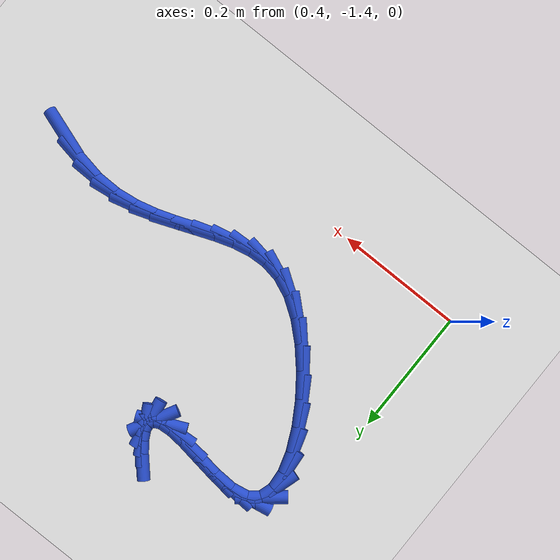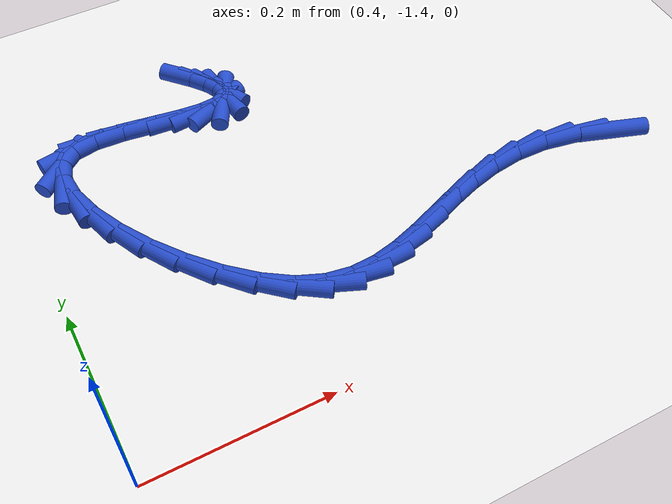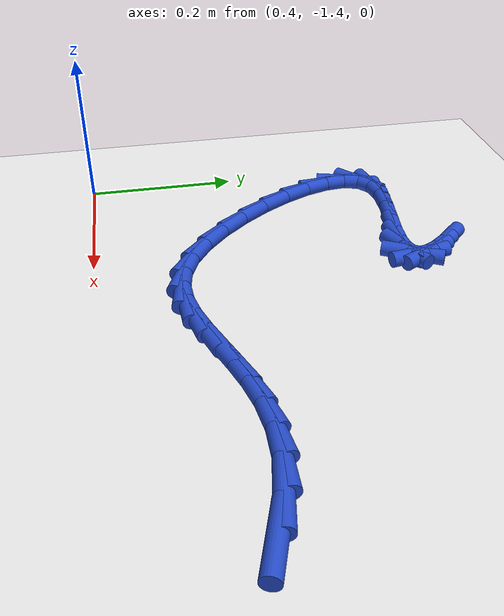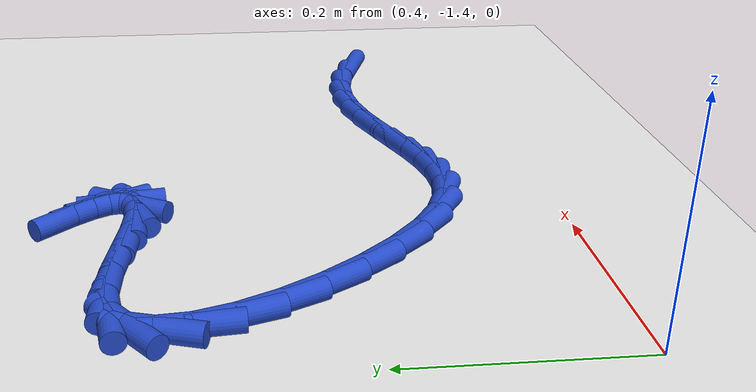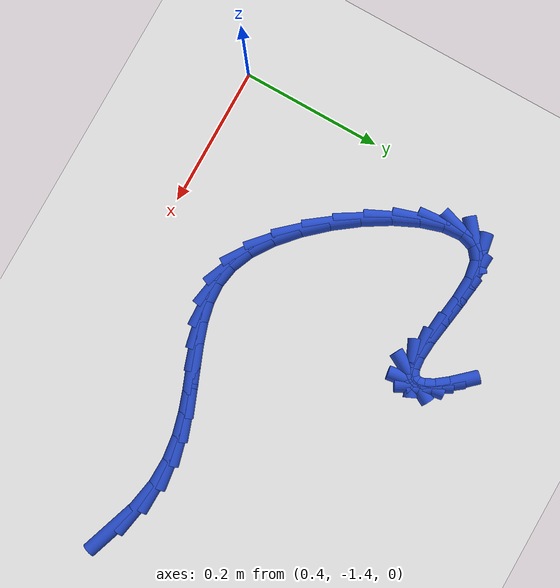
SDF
<sdf version="1.6">
 <world name="default">
  <model name="ground_plane">
   <static>1</static>
   <link name="link">
    <collision name="collision">
     <geometry><plane><normal>0 0 1</normal><size>100 100</size></plane></geometry>
     <surface><friction><ode><mu>100</mu><mu2>50</mu2></ode></friction></surface>
    </collision>
    <visual name="visual">
     <cast_shadows>0</cast_shadows>
     <geometry><plane><normal>0 0 1</normal><size>100 100</size></plane></geometry>
     <material>
      <script><uri>file://media/materials/scripts/gazebo.material</uri><name>Gazebo/WhiteGlow</name></script>
     </material>
    </visual>
   </link>
  </model>
  <model name="line">
   <link name="link_214">
    <pose>1.0316290465532898 -1.2549006064332544 0.01 0 1.57 -0.3308425352125115</pose>
    <collision name="collision">
     <geometry><cylinder><radius>0.01</radius><length>0.08</length></cylinder></geometry>
    </collision>
    <visual name="visual">
     <material>
      <script><name>Gazebo/Blue</name><uri>file://media/materials/scripts/gazebo.material</uri></script>
     </material>
     <geometry><cylinder><radius>0.01</radius><length>0.08</length></cylinder></geometry>
    </visual>
   </link>
   <link name="link_215">
    <pose>0.9897086421846959 -1.240502350872005 0.01 0 1.57 -0.18166723444582458</pose>
    <collision name="collision">
     <geometry><cylinder><radius>0.01</radius><length>0.08</length></cylinder></geometry>
    </collision>
    <visual name="visual">
     <material>
      <script><name>Gazebo/Blue</name><uri>file://media/materials/scripts/gazebo.material</uri></script>
     </material>
     <geometry><cylinder><radius>0.01</radius><length>0.08</length></cylinder></geometry>
    </visual>
   </link>
   <link name="link_216">
    <pose>0.9503331191479575 -1.233269362811756 0.01 0 1.57 -0.01719429442022004</pose>
    <collision name="collision">
     <geometry><cylinder><radius>0.01</radius><length>0.08</length></cylinder></geometry>
    </collision>
    <visual name="visual">
     <material>
      <script><name>Gazebo/Blue</name><uri>file://media/materials/scripts/gazebo.material</uri></script>
     </material>
     <geometry><cylinder><radius>0.01</radius><length>0.08</length></cylinder></geometry>
    </visual>
   </link>
   <link name="link_217">
    <pose>0.9136022588104983 -1.2326377393383992 0.01 0 1.57 0.13160253142416517</pose>
    <collision name="collision">
     <geometry><cylinder><radius>0.01</radius><length>0.08</length></cylinder></geometry>
    </collision>
    <visual name="visual">
     <material>
      <script><name>Gazebo/Blue</name><uri>file://media/materials/scripts/gazebo.material</uri></script>
     </material>
     <geometry><cylinder><radius>0.01</radius><length>0.08</length></cylinder></geometry>
    </visual>
   </link>
   <link name="link_218">
    <pose>0.879168828273526 -1.2371956093213774 0.01 0 1.57 0.2511171074284402</pose>
    <collision name="collision">
     <geometry><cylinder><radius>0.01</radius><length>0.08</length></cylinder></geometry>
    </collision>
    <visual name="visual">
     <material>
      <script><name>Gazebo/Blue</name><uri>file://media/materials/scripts/gazebo.material</uri></script>
     </material>
     <geometry><cylinder><radius>0.01</radius><length>0.08</length></cylinder></geometry>
    </visual>
   </link>
   <link name="link_219">
    <pose>0.846684435215825 -1.2455289022520908 0.01 0 1.57 0.3333633458584189</pose>
    <collision name="collision">
     <geometry><cylinder><radius>0.01</radius><length>0.08</length></cylinder></geometry>
    </collision>
    <visual name="visual">
     <material>
      <script><name>Gazebo/Blue</name><uri>file://media/materials/scripts/gazebo.material</uri></script>
     </material>
     <geometry><cylinder><radius>0.01</radius><length>0.08</length></cylinder></geometry>
    </visual>
   </link>
   <link name="link_220">
    <pose>0.8158006873161805 -1.25622354762194 0.01 0 1.57 0.374362348891255</pose>
    <collision name="collision">
     <geometry><cylinder><radius>0.01</radius><length>0.08</length></cylinder></geometry>
    </collision>
    <visual name="visual">
     <material>
      <script><name>Gazebo/Blue</name><uri>file://media/materials/scripts/gazebo.material</uri></script>
     </material>
     <geometry><cylinder><radius>0.01</radius><length>0.08</length></cylinder></geometry>
    </visual>
   </link>
   <link name="link_221">
    <pose>0.7861691922533788 -1.2678654749223264 0.01 0 1.57 0.37099048728548634</pose>
    <collision name="collision">
     <geometry><cylinder><radius>0.01</radius><length>0.08</length></cylinder></geometry>
    </collision>
    <visual name="visual">
     <material>
      <script><name>Gazebo/Blue</name><uri>file://media/materials/scripts/gazebo.material</uri></script>
     </material>
     <geometry><cylinder><radius>0.01</radius><length>0.08</length></cylinder></geometry>
    </visual>
   </link>
   <link name="link_222">
    <pose>0.7574415577062048 -1.27904061364465 0.01 0 1.57 0.3186664042334518</pose>
    <collision name="collision">
     <geometry><cylinder><radius>0.01</radius><length>0.08</length></cylinder></geometry>
    </collision>
    <visual name="visual">
     <material>
      <script><name>Gazebo/Blue</name><uri>file://media/materials/scripts/gazebo.material</uri></script>
     </material>
     <geometry><cylinder><radius>0.01</radius><length>0.08</length></cylinder></geometry>
    </visual>
   </link>
   <link name="link_223">
    <pose>0.7292693913534442 -1.288334893280311 0.01 0 1.57 0.21132685446694024</pose>
    <collision name="collision">
     <geometry><cylinder><radius>0.01</radius><length>0.08</length></cylinder></geometry>
    </collision>
    <visual name="visual">
     <material>
      <script><name>Gazebo/Blue</name><uri>file://media/materials/scripts/gazebo.material</uri></script>
     </material>
     <geometry><cylinder><radius>0.01</radius><length>0.08</length></cylinder></geometry>
    </visual>
   </link>
   <link name="link_224">
    <pose>0.701304300873883 -1.2943342433207108 0.01 0 1.57 0.04587724560419436</pose>
    <collision name="collision">
     <geometry><cylinder><radius>0.01</radius><length>0.08</length></cylinder></geometry>
    </collision>
    <visual name="visual">
     <material>
      <script><name>Gazebo/Blue</name><uri>file://media/materials/scripts/gazebo.material</uri></script>
     </material>
     <geometry><cylinder><radius>0.01</radius><length>0.08</length></cylinder></geometry>
    </visual>
   </link>
   <link name="link_225">
    <pose>0.6731978939463061 -1.2956245932572497 0.01 0 1.57 -0.16741730730868673</pose>
    <collision name="collision">
     <geometry><cylinder><radius>0.01</radius><length>0.08</length></cylinder></geometry>
    </collision>
    <visual name="visual">
     <material>
      <script><name>Gazebo/Blue</name><uri>file://media/materials/scripts/gazebo.material</uri></script>
     </material>
     <geometry><cylinder><radius>0.01</radius><length>0.08</length></cylinder></geometry>
    </visual>
   </link>
   <link name="link_226">
    <pose>0.644601778249499 -1.2907918725813285 0.01 0 1.57 -0.39772508614588237</pose>
    <collision name="collision">
     <geometry><cylinder><radius>0.01</radius><length>0.08</length></cylinder></geometry>
    </collision>
    <visual name="visual">
     <material>
      <script><name>Gazebo/Blue</name><uri>file://media/materials/scripts/gazebo.material</uri></script>
     </material>
     <geometry><cylinder><radius>0.01</radius><length>0.08</length></cylinder></geometry>
    </visual>
   </link>
   <link name="link_227">
    <pose>0.6151700679800401 -1.278427192378842 0.01 0 1.57 -0.5939928289723165</pose>
    <collision name="collision">
     <geometry><cylinder><radius>0.01</radius><length>0.08</length></cylinder></geometry>
    </collision>
    <visual name="visual">
     <material>
      <script><name>Gazebo/Blue</name><uri>file://media/materials/scripts/gazebo.material</uri></script>
     </material>
     <geometry><cylinder><radius>0.01</radius><length>0.08</length></cylinder></geometry>
    </visual>
   </link>
   <link name="link_228">
    <pose>0.5850100637421926 -1.258058512539624 0.01 0 1.57 -0.7328808905559868</pose>
    <collision name="collision">
     <geometry><cylinder><radius>0.01</radius><length>0.08</length></cylinder></geometry>
    </collision>
    <visual name="visual">
     <material>
      <script><name>Gazebo/Blue</name><uri>file://media/materials/scripts/gazebo.material</uri></script>
     </material>
     <geometry><cylinder><radius>0.01</radius><length>0.08</length></cylinder></geometry>
    </visual>
   </link>
   <link name="link_229">
    <pose>0.5552042420168961 -1.2312297235688057 0.01 0 1.57 -0.8396058471699509</pose>
    <collision name="collision">
     <geometry><cylinder><radius>0.01</radius><length>0.08</length></cylinder></geometry>
    </collision>
    <visual name="visual">
     <material>
      <script><name>Gazebo/Blue</name><uri>file://media/materials/scripts/gazebo.material</uri></script>
     </material>
     <geometry><cylinder><radius>0.01</radius><length>0.08</length></cylinder></geometry>
    </visual>
   </link>
   <link name="link_230">
    <pose>0.5269616303882116 -1.1997463285167875 0.01 0 1.57 -0.9325164330195219</pose>
    <collision name="collision">
     <geometry><cylinder><radius>0.01</radius><length>0.08</length></cylinder></geometry>
    </collision>
    <visual name="visual">
     <material>
      <script><name>Gazebo/Blue</name><uri>file://media/materials/scripts/gazebo.material</uri></script>
     </material>
     <geometry><cylinder><radius>0.01</radius><length>0.08</length></cylinder></geometry>
    </visual>
   </link>
   <link name="link_231">
    <pose>0.5014912564402005 -1.165413830433971 0.01 0 1.57 -1.024918993231405</pose>
    <collision name="collision">
     <geometry><cylinder><radius>0.01</radius><length>0.08</length></cylinder></geometry>
    </collision>
    <visual name="visual">
     <material>
      <script><name>Gazebo/Blue</name><uri>file://media/materials/scripts/gazebo.material</uri></script>
     </material>
     <geometry><cylinder><radius>0.01</radius><length>0.08</length></cylinder></geometry>
    </visual>
   </link>
   <link name="link_232">
    <pose>0.48000214775692346 -1.130037732370756 0.01 0 1.57 -1.1307223835581182</pose>
    <collision name="collision">
     <geometry><cylinder><radius>0.01</radius><length>0.08</length></cylinder></geometry>
    </collision>
    <visual name="visual">
     <material>
      <script><name>Gazebo/Blue</name><uri>file://media/materials/scripts/gazebo.material</uri></script>
     </material>
     <geometry><cylinder><radius>0.01</radius><length>0.08</length></cylinder></geometry>
    </visual>
   </link>
   <link name="link_233">
    <pose>0.4637033319224417 -1.0954235373775434 0.01 0 1.57 -1.2711876240547142</pose>
    <collision name="collision">
     <geometry><cylinder><radius>0.01</radius><length>0.08</length></cylinder></geometry>
    </collision>
    <visual name="visual">
     <material>
      <script><name>Gazebo/Blue</name><uri>file://media/materials/scripts/gazebo.material</uri></script>
     </material>
     <geometry><cylinder><radius>0.01</radius><length>0.08</length></cylinder></geometry>
    </visual>
   </link>
   <link name="link_234">
    <pose>0.45380383652081585 -1.0633767485047325 0.01 0 1.57 -1.4881937404741405</pose>
    <collision name="collision">
     <geometry><cylinder><radius>0.01</radius><length>0.08</length></cylinder></geometry>
    </collision>
    <visual name="visual">
     <material>
      <script><name>Gazebo/Blue</name><uri>file://media/materials/scripts/gazebo.material</uri></script>
     </material>
     <geometry><cylinder><radius>0.01</radius><length>0.08</length></cylinder></geometry>
    </visual>
   </link>
   <link name="link_235">
    <pose>0.4515126891361077 -1.0357028688027263 0.01 0 1.57 1.2760313594767994</pose>
    <collision name="collision">
     <geometry><cylinder><radius>0.01</radius><length>0.08</length></cylinder></geometry>
    </collision>
    <visual name="visual">
     <material>
      <script><name>Gazebo/Blue</name><uri>file://media/materials/scripts/gazebo.material</uri></script>
     </material>
     <geometry><cylinder><radius>0.01</radius><length>0.08</length></cylinder></geometry>
    </visual>
   </link>
   <link name="link_236">
    <pose>0.4580389173523779 -1.0142074013219244 0.01 0 1.57 0.6846225947855848</pose>
    <collision name="collision">
     <geometry><cylinder><radius>0.01</radius><length>0.08</length></cylinder></geometry>
    </collision>
    <visual name="visual">
     <material>
      <script><name>Gazebo/Blue</name><uri>file://media/materials/scripts/gazebo.material</uri></script>
     </material>
     <geometry><cylinder><radius>0.01</radius><length>0.08</length></cylinder></geometry>
    </visual>
   </link>
   <link name="link_237">
    <pose>0.47459098507764425 -1.0006953595163366 0.01 0 1.57 0.1772456858244525</pose>
    <collision name="collision">
     <geometry><cylinder><radius>0.01</radius><length>0.08</length></cylinder></geometry>
    </collision>
    <visual name="visual">
     <material>
      <script><name>Gazebo/Blue</name><uri>file://media/materials/scripts/gazebo.material</uri></script>
     </material>
     <geometry><cylinder><radius>0.01</radius><length>0.08</length></cylinder></geometry>
    </visual>
   </link>
   <link name="link_238">
    <pose>0.5011807929294688 -0.9959324487570386 0.01 0 1.57 -0.046092106613645586</pose>
    <collision name="collision">
     <geometry><cylinder><radius>0.01</radius><length>0.08</length></cylinder></geometry>
    </collision>
    <visual name="visual">
     <material>
      <script><name>Gazebo/Blue</name><uri>file://media/materials/scripts/gazebo.material</uri></script>
     </material>
     <geometry><cylinder><radius>0.01</radius><length>0.08</length></cylinder></geometry>
    </visual>
   </link>
   <link name="link_239">
    <pose>0.5340973054425379 -0.9974507154903807 0.01 0 1.57 -0.13433047091928968</pose>
    <collision name="collision">
     <geometry><cylinder><radius>0.01</radius><length>0.08</length></cylinder></geometry>
    </collision>
    <visual name="visual">
     <material>
      <script><name>Gazebo/Blue</name><uri>file://media/materials/scripts/gazebo.material</uri></script>
     </material>
     <geometry><cylinder><radius>0.01</radius><length>0.08</length></cylinder></geometry>
    </visual>
   </link>
   <link name="link_240">
    <pose>0.5689075157993915 -1.002155118011239 0.01 0 1.57 -0.1475217067180697</pose>
    <collision name="collision">
     <geometry><cylinder><radius>0.01</radius><length>0.08</length></cylinder></geometry>
    </collision>
    <visual name="visual">
     <material>
      <script><name>Gazebo/Blue</name><uri>file://media/materials/scripts/gazebo.material</uri></script>
     </material>
     <geometry><cylinder><radius>0.01</radius><length>0.08</length></cylinder></geometry>
    </visual>
   </link>
   <link name="link_241">
    <pose>0.6011784171825703 -1.0069506146144902 0.01 0 1.57 -0.07947972812665748</pose>
    <collision name="collision">
     <geometry><cylinder><radius>0.01</radius><length>0.08</length></cylinder></geometry>
    </collision>
    <visual name="visual">
     <material>
      <script><name>Gazebo/Blue</name><uri>file://media/materials/scripts/gazebo.material</uri></script>
     </material>
     <geometry><cylinder><radius>0.01</radius><length>0.08</length></cylinder></geometry>
    </visual>
   </link>
   <link name="link_242">
    <pose>0.626857435921178 -1.008995884532401 0.01 0 1.57 0.08304184035923834</pose>
    <collision name="collision">
     <geometry><cylinder><radius>0.01</radius><length>0.08</length></cylinder></geometry>
    </collision>
    <visual name="visual">
     <material>
      <script><name>Gazebo/Blue</name><uri>file://media/materials/scripts/gazebo.material</uri></script>
     </material>
     <geometry><cylinder><radius>0.01</radius><length>0.08</length></cylinder></geometry>
    </visual>
   </link>
   <link name="link_243">
    <pose>0.6449512161647076 -1.0074898803542718 0.01 0 1.57 0.41752120673894216</pose>
    <collision name="collision">
     <geometry><cylinder><radius>0.01</radius><length>0.08</length></cylinder></geometry>
    </collision>
    <visual name="visual">
     <material>
      <script><name>Gazebo/Blue</name><uri>file://media/materials/scripts/gazebo.material</uri></script>
     </material>
     <geometry><cylinder><radius>0.01</radius><length>0.08</length></cylinder></geometry>
    </visual>
   </link>
   <link name="link_244">
    <pose>0.6559408014840301 -1.0026148706781628 0.01 0 1.57 1.0731692729895308</pose>
    <collision name="collision">
     <geometry><cylinder><radius>0.01</radius><length>0.08</length></cylinder></geometry>
    </collision>
    <visual name="visual">
     <material>
      <script><name>Gazebo/Blue</name><uri>file://media/materials/scripts/gazebo.material</uri></script>
     </material>
     <geometry><cylinder><radius>0.01</radius><length>0.08</length></cylinder></geometry>
    </visual>
   </link>
   <link name="link_245">
    <pose>0.6603167128466204 -0.9945594448288421 0.01 0 1.57 -1.4139349307316782</pose>
    <collision name="collision">
     <geometry><cylinder><radius>0.01</radius><length>0.08</length></cylinder></geometry>
    </collision>
    <visual name="visual">
     <material>
      <script><name>Gazebo/Blue</name><uri>file://media/materials/scripts/gazebo.material</uri></script>
     </material>
     <geometry><cylinder><radius>0.01</radius><length>0.08</length></cylinder></geometry>
    </visual>
   </link>
   <link name="link_246">
    <pose>0.6585694712199518 -0.9835121921310765 0.01 0 1.57 -1.0812356215675087</pose>
    <collision name="collision">
     <geometry><cylinder><radius>0.01</radius><length>0.08</length></cylinder></geometry>
    </collision>
    <visual name="visual">
     <material>
      <script><name>Gazebo/Blue</name><uri>file://media/materials/scripts/gazebo.material</uri></script>
     </material>
     <geometry><cylinder><radius>0.01</radius><length>0.08</length></cylinder></geometry>
    </visual>
   </link>
   <link name="link_247">
    <pose>0.651189597571498 -0.9696617019096333 0.01 0 1.57 -0.9205995147859212</pose>
    <collision name="collision">
     <geometry><cylinder><radius>0.01</radius><length>0.08</length></cylinder></geometry>
    </collision>
    <visual name="visual">
     <material>
      <script><name>Gazebo/Blue</name><uri>file://media/materials/scripts/gazebo.material</uri></script>
     </material>
     <geometry><cylinder><radius>0.01</radius><length>0.08</length></cylinder></geometry>
    </visual>
   </link>
   <link name="link_248">
    <pose>0.6386676128687329 -0.9531965634892798 0.01 0 1.57 -0.8329882495138797</pose>
    <collision name="collision">
     <geometry><cylinder><radius>0.01</radius><length>0.08</length></cylinder></geometry>
    </collision>
    <visual name="visual">
     <material>
      <script><name>Gazebo/Blue</name><uri>file://media/materials/scripts/gazebo.material</uri></script>
     </material>
     <geometry><cylinder><radius>0.01</radius><length>0.08</length></cylinder></geometry>
    </visual>
   </link>
  </model>
 </world>
</sdf>
